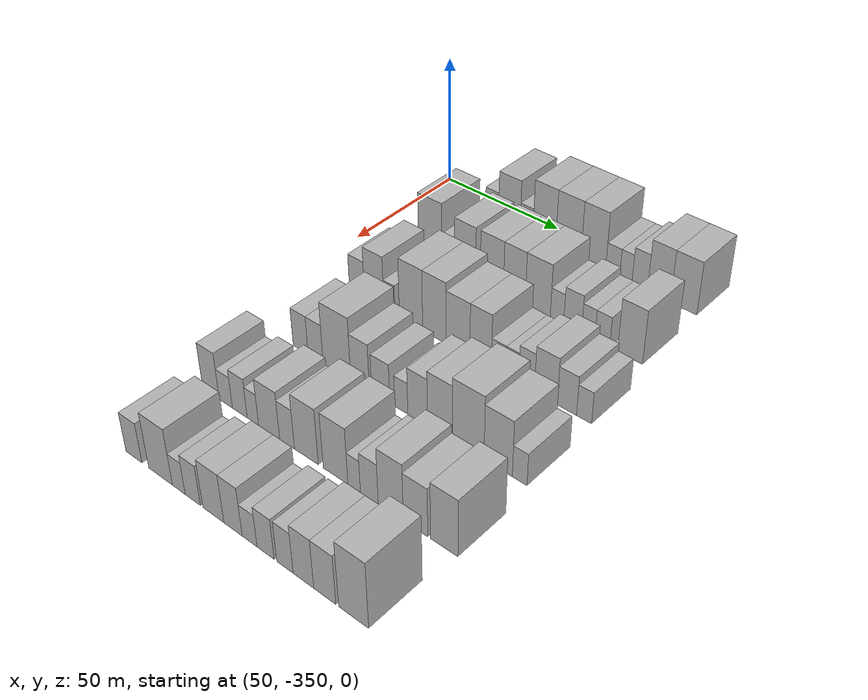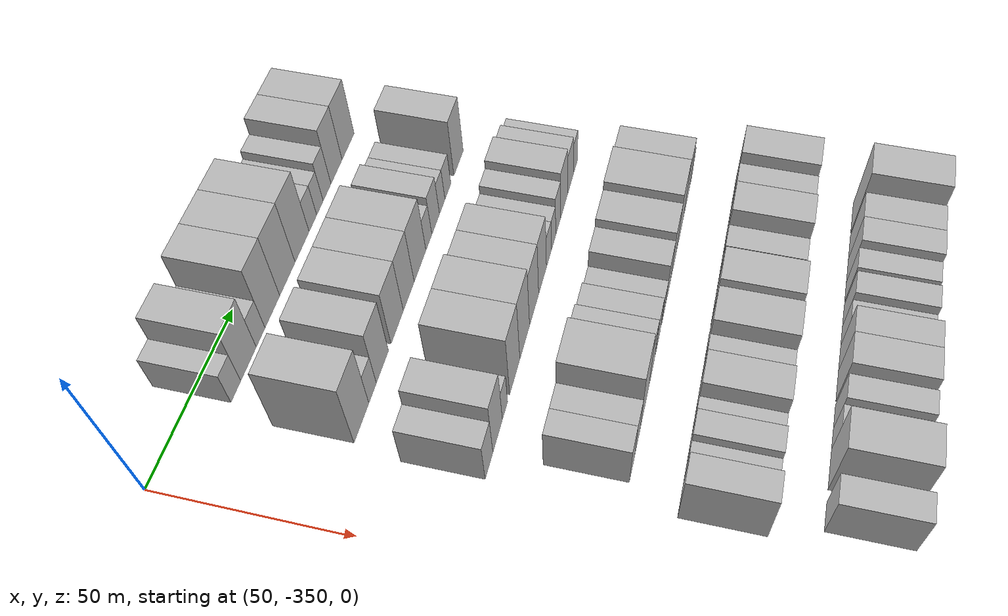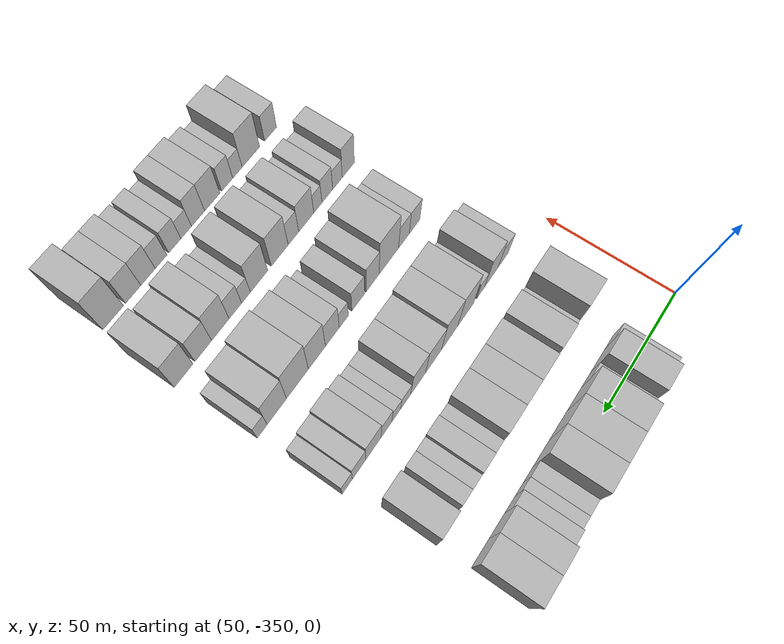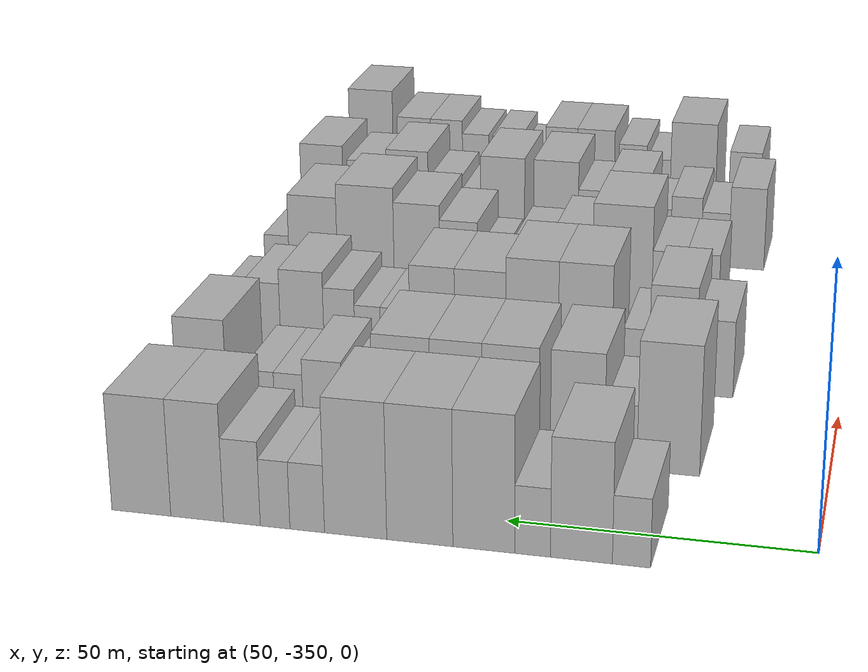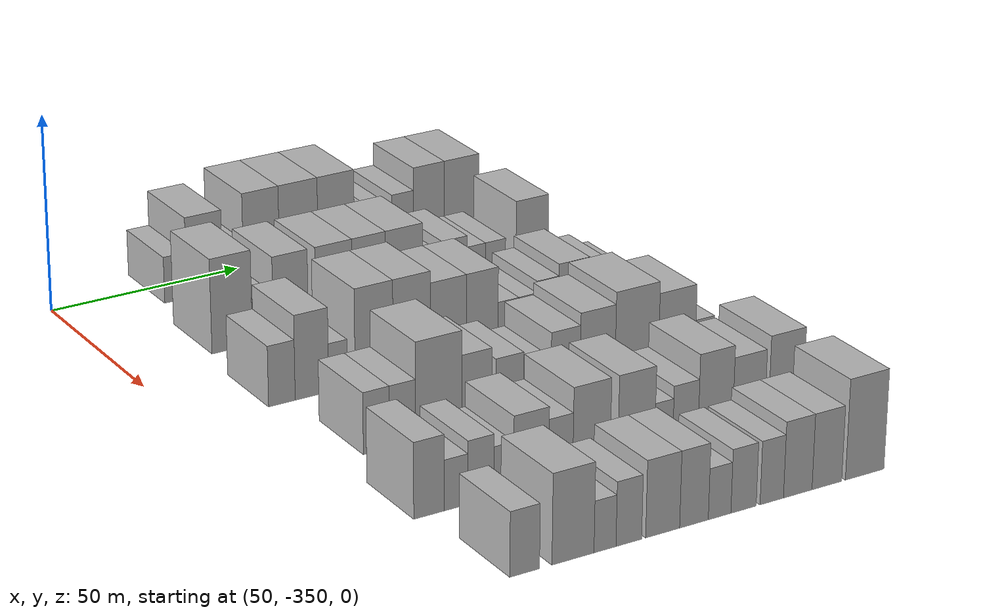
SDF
<sdf version="1.6">
 <world name="default">
  <model name="building_23">
   <static>1</static>
   <pose>50.0000 -321.8268 0 0.000000 0.000000 0.000000</pose>
   <link name="link">
    <pose>0 0 6.00 0 0 0</pose>
    <collision name="collision"><geometry><box><size>20.0000 5.9980 12.0000</size></box></geometry></collision>
    <visual name="visual">
     <cast_shadows>0</cast_shadows>
     <geometry><box><size>20.0000 5.9980 12.0000</size></box></geometry>
     <material>
      <script>
       <uri>model://HANNAS_wall/materials/scripts</uri>
       <uri>model://HANNAS_wall/materials/textures</uri>
       <name>vrc/HANNAS_wall</name>
      </script>
     </material>
    </visual>
   </link>
  </model>
  <model name="building_24">
   <static>1</static>
   <pose>50.0000 -313.9311 0 0.000000 0.000000 0.000000</pose>
   <link name="link">
    <pose>0 0 10.50 0 0 0</pose>
    <collision name="collision"><geometry><box><size>20.0000 9.7935 21.0000</size></box></geometry></collision>
    <visual name="visual">
     <cast_shadows>0</cast_shadows>
     <geometry><box><size>20.0000 9.7935 21.0000</size></box></geometry>
     <material>
      <script>
       <uri>model://HANNAS_wall/materials/scripts</uri>
       <uri>model://HANNAS_wall/materials/textures</uri>
       <name>vrc/HANNAS_wall</name>
      </script>
     </material>
    </visual>
   </link>
  </model>
  <model name="building_25">
   <static>1</static>
   <pose>50.0000 -306.1624 0 0.000000 0.000000 0.000000</pose>
   <link name="link">
    <pose>0 0 6.00 0 0 0</pose>
    <collision name="collision"><geometry><box><size>20.0000 5.7439 12.0000</size></box></geometry></collision>
    <visual name="visual">
     <cast_shadows>0</cast_shadows>
     <geometry><box><size>20.0000 5.7439 12.0000</size></box></geometry>
     <material>
      <script>
       <uri>model://HANNAS_wall/materials/scripts</uri>
       <uri>model://HANNAS_wall/materials/textures</uri>
       <name>vrc/HANNAS_wall</name>
      </script>
     </material>
    </visual>
   </link>
  </model>
  <model name="building_26">
   <static>1</static>
   <pose>50.0000 -298.3166 0 0.000000 0.000000 0.000000</pose>
   <link name="link">
    <pose>0 0 12.00 0 0 0</pose>
    <collision name="collision"><geometry><box><size>20.0000 9.9476 24.0000</size></box></geometry></collision>
    <visual name="visual">
     <cast_shadows>0</cast_shadows>
     <geometry><box><size>20.0000 9.9476 24.0000</size></box></geometry>
     <material>
      <script>
       <uri>model://HANNAS_wall/materials/scripts</uri>
       <uri>model://HANNAS_wall/materials/textures</uri>
       <name>vrc/HANNAS_wall</name>
      </script>
     </material>
    </visual>
   </link>
  </model>
  <model name="building_27">
   <static>1</static>
   <pose>50.0000 -287.9435 0 0.000000 0.000000 0.000000</pose>
   <link name="link">
    <pose>0 0 12.00 0 0 0</pose>
    <collision name="collision"><geometry><box><size>20.0000 10.7986 24.0000</size></box></geometry></collision>
    <visual name="visual">
     <cast_shadows>0</cast_shadows>
     <geometry><box><size>20.0000 10.7986 24.0000</size></box></geometry>
     <material>
      <script>
       <uri>model://HANNAS_wall/materials/scripts</uri>
       <uri>model://HANNAS_wall/materials/textures</uri>
       <name>vrc/HANNAS_wall</name>
      </script>
     </material>
    </visual>
   </link>
  </model>
  <model name="building_28">
   <static>1</static>
   <pose>50.0000 -277.3953 0 0.000000 0.000000 0.000000</pose>
   <link name="link">
    <pose>0 0 12.00 0 0 0</pose>
    <collision name="collision"><geometry><box><size>20.0000 10.2977 24.0000</size></box></geometry></collision>
    <visual name="visual">
     <cast_shadows>0</cast_shadows>
     <geometry><box><size>20.0000 10.2977 24.0000</size></box></geometry>
     <material>
      <script>
       <uri>model://HANNAS_wall/materials/scripts</uri>
       <uri>model://HANNAS_wall/materials/textures</uri>
       <name>vrc/HANNAS_wall</name>
      </script>
     </material>
    </visual>
   </link>
  </model>
  <model name="building_29">
   <static>1</static>
   <pose>50.0000 -269.3623 0 0.000000 0.000000 0.000000</pose>
   <link name="link">
    <pose>0 0 6.00 0 0 0</pose>
    <collision name="collision"><geometry><box><size>20.0000 5.7684 12.0000</size></box></geometry></collision>
    <visual name="visual">
     <cast_shadows>0</cast_shadows>
     <geometry><box><size>20.0000 5.7684 12.0000</size></box></geometry>
     <material>
      <script>
       <uri>model://HANNAS_wall/materials/scripts</uri>
       <uri>model://HANNAS_wall/materials/textures</uri>
       <name>vrc/HANNAS_wall</name>
      </script>
     </material>
    </visual>
   </link>
  </model>
  <model name="building_30">
   <static>1</static>
   <pose>50.0000 -263.9876 0 0.000000 0.000000 0.000000</pose>
   <link name="link">
    <pose>0 0 6.00 0 0 0</pose>
    <collision name="collision"><geometry><box><size>20.0000 4.9809 12.0000</size></box></geometry></collision>
    <visual name="visual">
     <cast_shadows>0</cast_shadows>
     <geometry><box><size>20.0000 4.9809 12.0000</size></box></geometry>
     <material>
      <script>
       <uri>model://HANNAS_wall/materials/scripts</uri>
       <uri>model://HANNAS_wall/materials/textures</uri>
       <name>vrc/HANNAS_wall</name>
      </script>
     </material>
    </visual>
   </link>
  </model>
  <model name="building_31">
   <static>1</static>
   <pose>50.0000 -258.3971 0 0.000000 0.000000 0.000000</pose>
   <link name="link">
    <pose>0 0 7.50 0 0 0</pose>
    <collision name="collision"><geometry><box><size>20.0000 6.2002 15.0000</size></box></geometry></collision>
    <visual name="visual">
     <cast_shadows>0</cast_shadows>
     <geometry><box><size>20.0000 6.2002 15.0000</size></box></geometry>
     <material>
      <script>
       <uri>model://HANNAS_wall/materials/scripts</uri>
       <uri>model://HANNAS_wall/materials/textures</uri>
       <name>vrc/HANNAS_wall</name>
      </script>
     </material>
    </visual>
   </link>
  </model>
  <model name="building_32">
   <static>1</static>
   <pose>50.0000 -250.7903 0 0.000000 0.000000 0.000000</pose>
   <link name="link">
    <pose>0 0 10.50 0 0 0</pose>
    <collision name="collision"><geometry><box><size>20.0000 9.0134 21.0000</size></box></geometry></collision>
    <visual name="visual">
     <cast_shadows>0</cast_shadows>
     <geometry><box><size>20.0000 9.0134 21.0000</size></box></geometry>
     <material>
      <script>
       <uri>model://HANNAS_wall/materials/scripts</uri>
       <uri>model://HANNAS_wall/materials/textures</uri>
       <name>vrc/HANNAS_wall</name>
      </script>
     </material>
    </visual>
   </link>
  </model>
  <model name="building_33">
   <static>1</static>
   <pose>50.0000 -241.2008 0 0.000000 0.000000 0.000000</pose>
   <link name="link">
    <pose>0 0 10.50 0 0 0</pose>
    <collision name="collision"><geometry><box><size>20.0000 10.1658 21.0000</size></box></geometry></collision>
    <visual name="visual">
     <cast_shadows>0</cast_shadows>
     <geometry><box><size>20.0000 10.1658 21.0000</size></box></geometry>
     <material>
      <script>
       <uri>model://HANNAS_wall/materials/scripts</uri>
       <uri>model://HANNAS_wall/materials/textures</uri>
       <name>vrc/HANNAS_wall</name>
      </script>
     </material>
    </visual>
   </link>
  </model>
  <model name="building_137">
   <static>1</static>
   <pose>82.0000 -323.1392 0 0.000000 0.000000 0.000000</pose>
   <link name="link">
    <pose>0 0 12.00 0 0 0</pose>
    <collision name="collision"><geometry><box><size>20.0000 10.6695 24.0000</size></box></geometry></collision>
    <visual name="visual">
     <cast_shadows>0</cast_shadows>
     <geometry><box><size>20.0000 10.6695 24.0000</size></box></geometry>
     <material>
      <script>
       <uri>model://HANNAS_wall/materials/scripts</uri>
       <uri>model://HANNAS_wall/materials/textures</uri>
       <name>vrc/HANNAS_wall</name>
      </script>
     </material>
    </visual>
   </link>
  </model>
  <model name="building_138">
   <static>1</static>
   <pose>82.0000 -315.0124 0 0.000000 0.000000 0.000000</pose>
   <link name="link">
    <pose>0 0 6.00 0 0 0</pose>
    <collision name="collision"><geometry><box><size>20.0000 5.5840 12.0000</size></box></geometry></collision>
    <visual name="visual">
     <cast_shadows>0</cast_shadows>
     <geometry><box><size>20.0000 5.5840 12.0000</size></box></geometry>
     <material>
      <script>
       <uri>model://HANNAS_wall/materials/scripts</uri>
       <uri>model://HANNAS_wall/materials/textures</uri>
       <name>vrc/HANNAS_wall</name>
      </script>
     </material>
    </visual>
   </link>
  </model>
  <model name="building_139">
   <static>1</static>
   <pose>82.0000 -307.5283 0 0.000000 0.000000 0.000000</pose>
   <link name="link">
    <pose>0 0 10.50 0 0 0</pose>
    <collision name="collision"><geometry><box><size>20.0000 9.3842 21.0000</size></box></geometry></collision>
    <visual name="visual">
     <cast_shadows>0</cast_shadows>
     <geometry><box><size>20.0000 9.3842 21.0000</size></box></geometry>
     <material>
      <script>
       <uri>model://HANNAS_wall/materials/scripts</uri>
       <uri>model://HANNAS_wall/materials/textures</uri>
       <name>vrc/HANNAS_wall</name>
      </script>
     </material>
    </visual>
   </link>
  </model>
  <model name="building_140">
   <static>1</static>
   <pose>82.0000 -295.8513 0 0.000000 0.000000 0.000000</pose>
   <link name="link">
    <pose>0 0 10.50 0 0 0</pose>
    <collision name="collision"><geometry><box><size>20.0000 9.9696 21.0000</size></box></geometry></collision>
    <visual name="visual">
     <cast_shadows>0</cast_shadows>
     <geometry><box><size>20.0000 9.9696 21.0000</size></box></geometry>
     <material>
      <script>
       <uri>model://HANNAS_wall/materials/scripts</uri>
       <uri>model://HANNAS_wall/materials/textures</uri>
       <name>vrc/HANNAS_wall</name>
      </script>
     </material>
    </visual>
   </link>
  </model>
  <model name="building_141">
   <static>1</static>
   <pose>82.0000 -286.2751 0 0.000000 0.000000 0.000000</pose>
   <link name="link">
    <pose>0 0 10.50 0 0 0</pose>
    <collision name="collision"><geometry><box><size>20.0000 9.1829 21.0000</size></box></geometry></collision>
    <visual name="visual">
     <cast_shadows>0</cast_shadows>
     <geometry><box><size>20.0000 9.1829 21.0000</size></box></geometry>
     <material>
      <script>
       <uri>model://HANNAS_wall/materials/scripts</uri>
       <uri>model://HANNAS_wall/materials/textures</uri>
       <name>vrc/HANNAS_wall</name>
      </script>
     </material>
    </visual>
   </link>
  </model>
  <model name="building_142">
   <static>1</static>
   <pose>82.0000 -276.5397 0 0.000000 0.000000 0.000000</pose>
   <link name="link">
    <pose>0 0 10.50 0 0 0</pose>
    <collision name="collision"><geometry><box><size>20.0000 10.2878 21.0000</size></box></geometry></collision>
    <visual name="visual">
     <cast_shadows>0</cast_shadows>
     <geometry><box><size>20.0000 10.2878 21.0000</size></box></geometry>
     <material>
      <script>
       <uri>model://HANNAS_wall/materials/scripts</uri>
       <uri>model://HANNAS_wall/materials/textures</uri>
       <name>vrc/HANNAS_wall</name>
      </script>
     </material>
    </visual>
   </link>
  </model>
  <model name="building_143">
   <static>1</static>
   <pose>82.0000 -268.6971 0 0.000000 0.000000 0.000000</pose>
   <link name="link">
    <pose>0 0 6.00 0 0 0</pose>
    <collision name="collision"><geometry><box><size>20.0000 5.3975 12.0000</size></box></geometry></collision>
    <visual name="visual">
     <cast_shadows>0</cast_shadows>
     <geometry><box><size>20.0000 5.3975 12.0000</size></box></geometry>
     <material>
      <script>
       <uri>model://HANNAS_wall/materials/scripts</uri>
       <uri>model://HANNAS_wall/materials/textures</uri>
       <name>vrc/HANNAS_wall</name>
      </script>
     </material>
    </visual>
   </link>
  </model>
  <model name="building_144">
   <static>1</static>
   <pose>82.0000 -262.4551 0 0.000000 0.000000 0.000000</pose>
   <link name="link">
    <pose>0 0 7.50 0 0 0</pose>
    <collision name="collision"><geometry><box><size>20.0000 7.0865 15.0000</size></box></geometry></collision>
    <visual name="visual">
     <cast_shadows>0</cast_shadows>
     <geometry><box><size>20.0000 7.0865 15.0000</size></box></geometry>
     <material>
      <script>
       <uri>model://HANNAS_wall/materials/scripts</uri>
       <uri>model://HANNAS_wall/materials/textures</uri>
       <name>vrc/HANNAS_wall</name>
      </script>
     </material>
    </visual>
   </link>
  </model>
  <model name="building_145">
   <static>1</static>
   <pose>82.0000 -256.3212 0 0.000000 0.000000 0.000000</pose>
   <link name="link">
    <pose>0 0 6.00 0 0 0</pose>
    <collision name="collision"><geometry><box><size>20.0000 5.1814 12.0000</size></box></geometry></collision>
    <visual name="visual">
     <cast_shadows>0</cast_shadows>
     <geometry><box><size>20.0000 5.1814 12.0000</size></box></geometry>
     <material>
      <script>
       <uri>model://HANNAS_wall/materials/scripts</uri>
       <uri>model://HANNAS_wall/materials/textures</uri>
       <name>vrc/HANNAS_wall</name>
      </script>
     </material>
    </visual>
   </link>
  </model>
  <model name="building_146">
   <static>1</static>
   <pose>82.0000 -250.8642 0 0.000000 0.000000 0.000000</pose>
   <link name="link">
    <pose>0 0 6.00 0 0 0</pose>
    <collision name="collision"><geometry><box><size>20.0000 5.7325 12.0000</size></box></geometry></collision>
    <visual name="visual">
     <cast_shadows>0</cast_shadows>
     <geometry><box><size>20.0000 5.7325 12.0000</size></box></geometry>
     <material>
      <script>
       <uri>model://HANNAS_wall/materials/scripts</uri>
       <uri>model://HANNAS_wall/materials/textures</uri>
       <name>vrc/HANNAS_wall</name>
      </script>
     </material>
    </visual>
   </link>
  </model>
  <model name="building_147">
   <static>1</static>
   <pose>82.0000 -240.3228 0 0.000000 0.000000 0.000000</pose>
   <link name="link">
    <pose>0 0 10.50 0 0 0</pose>
    <collision name="collision"><geometry><box><size>20.0000 9.3504 21.0000</size></box></geometry></collision>
    <visual name="visual">
     <cast_shadows>0</cast_shadows>
     <geometry><box><size>20.0000 9.3504 21.0000</size></box></geometry>
     <material>
      <script>
       <uri>model://HANNAS_wall/materials/scripts</uri>
       <uri>model://HANNAS_wall/materials/textures</uri>
       <name>vrc/HANNAS_wall</name>
      </script>
     </material>
    </visual>
   </link>
  </model>
  <model name="building_262">
   <static>1</static>
   <pose>114.0000 -327.1952 0 0.000000 0.000000 0.000000</pose>
   <link name="link">
    <pose>0 0 7.50 0 0 0</pose>
    <collision name="collision"><geometry><box><size>20.0000 6.8262 15.0000</size></box></geometry></collision>
    <visual name="visual">
     <cast_shadows>0</cast_shadows>
     <geometry><box><size>20.0000 6.8262 15.0000</size></box></geometry>
     <material>
      <script>
       <uri>model://HANNAS_wall/materials/scripts</uri>
       <uri>model://HANNAS_wall/materials/textures</uri>
       <name>vrc/HANNAS_wall</name>
      </script>
     </material>
    </visual>
   </link>
  </model>
  <model name="building_263">
   <static>1</static>
   <pose>114.0000 -319.4379 0 0.000000 0.000000 0.000000</pose>
   <link name="link">
    <pose>0 0 10.50 0 0 0</pose>
    <collision name="collision"><geometry><box><size>20.0000 8.6884 21.0000</size></box></geometry></collision>
    <visual name="visual">
     <cast_shadows>0</cast_shadows>
     <geometry><box><size>20.0000 8.6884 21.0000</size></box></geometry>
     <material>
      <script>
       <uri>model://HANNAS_wall/materials/scripts</uri>
       <uri>model://HANNAS_wall/materials/textures</uri>
       <name>vrc/HANNAS_wall</name>
      </script>
     </material>
    </visual>
   </link>
  </model>
  <model name="building_264">
   <static>1</static>
   <pose>114.0000 -312.6495 0 0.000000 0.000000 0.000000</pose>
   <link name="link">
    <pose>0 0 6.00 0 0 0</pose>
    <collision name="collision"><geometry><box><size>20.0000 4.8883 12.0000</size></box></geometry></collision>
    <visual name="visual">
     <cast_shadows>0</cast_shadows>
     <geometry><box><size>20.0000 4.8883 12.0000</size></box></geometry>
     <material>
      <script>
       <uri>model://HANNAS_wall/materials/scripts</uri>
       <uri>model://HANNAS_wall/materials/textures</uri>
       <name>vrc/HANNAS_wall</name>
      </script>
     </material>
    </visual>
   </link>
  </model>
  <model name="building_265">
   <static>1</static>
   <pose>114.0000 -303.1821 0 0.000000 0.000000 0.000000</pose>
   <link name="link">
    <pose>0 0 12.00 0 0 0</pose>
    <collision name="collision"><geometry><box><size>20.0000 10.0465 24.0000</size></box></geometry></collision>
    <visual name="visual">
     <cast_shadows>0</cast_shadows>
     <geometry><box><size>20.0000 10.0465 24.0000</size></box></geometry>
     <material>
      <script>
       <uri>model://HANNAS_wall/materials/scripts</uri>
       <uri>model://HANNAS_wall/materials/textures</uri>
       <name>vrc/HANNAS_wall</name>
      </script>
     </material>
    </visual>
   </link>
  </model>
  <model name="building_266">
   <static>1</static>
   <pose>114.0000 -293.1927 0 0.000000 0.000000 0.000000</pose>
   <link name="link">
    <pose>0 0 12.00 0 0 0</pose>
    <collision name="collision"><geometry><box><size>20.0000 9.9322 24.0000</size></box></geometry></collision>
    <visual name="visual">
     <cast_shadows>0</cast_shadows>
     <geometry><box><size>20.0000 9.9322 24.0000</size></box></geometry>
     <material>
      <script>
       <uri>model://HANNAS_wall/materials/scripts</uri>
       <uri>model://HANNAS_wall/materials/textures</uri>
       <name>vrc/HANNAS_wall</name>
      </script>
     </material>
    </visual>
   </link>
  </model>
  <model name="building_267">
   <static>1</static>
   <pose>114.0000 -283.3619 0 0.000000 0.000000 0.000000</pose>
   <link name="link">
    <pose>0 0 10.50 0 0 0</pose>
    <collision name="collision"><geometry><box><size>20.0000 9.7294 21.0000</size></box></geometry></collision>
    <visual name="visual">
     <cast_shadows>0</cast_shadows>
     <geometry><box><size>20.0000 9.7294 21.0000</size></box></geometry>
     <material>
      <script>
       <uri>model://HANNAS_wall/materials/scripts</uri>
       <uri>model://HANNAS_wall/materials/textures</uri>
       <name>vrc/HANNAS_wall</name>
      </script>
     </material>
    </visual>
   </link>
  </model>
  <model name="building_268">
   <static>1</static>
   <pose>114.0000 -274.1847 0 0.000000 0.000000 0.000000</pose>
   <link name="link">
    <pose>0 0 10.50 0 0 0</pose>
    <collision name="collision"><geometry><box><size>20.0000 8.6250 21.0000</size></box></geometry></collision>
    <visual name="visual">
     <cast_shadows>0</cast_shadows>
     <geometry><box><size>20.0000 8.6250 21.0000</size></box></geometry>
     <material>
      <script>
       <uri>model://HANNAS_wall/materials/scripts</uri>
       <uri>model://HANNAS_wall/materials/textures</uri>
       <name>vrc/HANNAS_wall</name>
      </script>
     </material>
    </visual>
   </link>
  </model>
  <model name="building_269">
   <static>1</static>
   <pose>114.0000 -267.0155 0 0.000000 0.000000 0.000000</pose>
   <link name="link">
    <pose>0 0 6.00 0 0 0</pose>
    <collision name="collision"><geometry><box><size>20.0000 5.7134 12.0000</size></box></geometry></collision>
    <visual name="visual">
     <cast_shadows>0</cast_shadows>
     <geometry><box><size>20.0000 5.7134 12.0000</size></box></geometry>
     <material>
      <script>
       <uri>model://HANNAS_wall/materials/scripts</uri>
       <uri>model://HANNAS_wall/materials/textures</uri>
       <name>vrc/HANNAS_wall</name>
      </script>
     </material>
    </visual>
   </link>
  </model>
  <model name="building_270">
   <static>1</static>
   <pose>114.0000 -261.6629 0 0.000000 0.000000 0.000000</pose>
   <link name="link">
    <pose>0 0 6.00 0 0 0</pose>
    <collision name="collision"><geometry><box><size>20.0000 4.9918 12.0000</size></box></geometry></collision>
    <visual name="visual">
     <cast_shadows>0</cast_shadows>
     <geometry><box><size>20.0000 4.9918 12.0000</size></box></geometry>
     <material>
      <script>
       <uri>model://HANNAS_wall/materials/scripts</uri>
       <uri>model://HANNAS_wall/materials/textures</uri>
       <name>vrc/HANNAS_wall</name>
      </script>
     </material>
    </visual>
   </link>
  </model>
  <model name="building_271">
   <static>1</static>
   <pose>114.0000 -256.1340 0 0.000000 0.000000 0.000000</pose>
   <link name="link">
    <pose>0 0 7.50 0 0 0</pose>
    <collision name="collision"><geometry><box><size>20.0000 6.0661 15.0000</size></box></geometry></collision>
    <visual name="visual">
     <cast_shadows>0</cast_shadows>
     <geometry><box><size>20.0000 6.0661 15.0000</size></box></geometry>
     <material>
      <script>
       <uri>model://HANNAS_wall/materials/scripts</uri>
       <uri>model://HANNAS_wall/materials/textures</uri>
       <name>vrc/HANNAS_wall</name>
      </script>
     </material>
    </visual>
   </link>
  </model>
  <model name="building_272">
   <static>1</static>
   <pose>114.0000 -248.8152 0 0.000000 0.000000 0.000000</pose>
   <link name="link">
    <pose>0 0 9.00 0 0 0</pose>
    <collision name="collision"><geometry><box><size>20.0000 8.5715 18.0000</size></box></geometry></collision>
    <visual name="visual">
     <cast_shadows>0</cast_shadows>
     <geometry><box><size>20.0000 8.5715 18.0000</size></box></geometry>
     <material>
      <script>
       <uri>model://HANNAS_wall/materials/scripts</uri>
       <uri>model://HANNAS_wall/materials/textures</uri>
       <name>vrc/HANNAS_wall</name>
      </script>
     </material>
    </visual>
   </link>
  </model>
  <model name="building_273">
   <static>1</static>
   <pose>114.0000 -240.9714 0 0.000000 0.000000 0.000000</pose>
   <link name="link">
    <pose>0 0 7.50 0 0 0</pose>
    <collision name="collision"><geometry><box><size>20.0000 7.1161 15.0000</size></box></geometry></collision>
    <visual name="visual">
     <cast_shadows>0</cast_shadows>
     <geometry><box><size>20.0000 7.1161 15.0000</size></box></geometry>
     <material>
      <script>
       <uri>model://HANNAS_wall/materials/scripts</uri>
       <uri>model://HANNAS_wall/materials/textures</uri>
       <name>vrc/HANNAS_wall</name>
      </script>
     </material>
    </visual>
   </link>
  </model>
  <model name="building_274">
   <static>1</static>
   <pose>114.0000 -234.6882 0 0.000000 0.000000 0.000000</pose>
   <link name="link">
    <pose>0 0 6.00 0 0 0</pose>
    <collision name="collision"><geometry><box><size>20.0000 5.4502 12.0000</size></box></geometry></collision>
    <visual name="visual">
     <cast_shadows>0</cast_shadows>
     <geometry><box><size>20.0000 5.4502 12.0000</size></box></geometry>
     <material>
      <script>
       <uri>model://HANNAS_wall/materials/scripts</uri>
       <uri>model://HANNAS_wall/materials/textures</uri>
       <name>vrc/HANNAS_wall</name>
      </script>
     </material>
    </visual>
   </link>
  </model>
  <model name="building_382">
   <static>1</static>
   <pose>146.0000 -320.8906 0 0.000000 0.000000 0.000000</pose>
   <link name="link">
    <pose>0 0 7.50 0 0 0</pose>
    <collision name="collision"><geometry><box><size>20.0000 6.6237 15.0000</size></box></geometry></collision>
    <visual name="visual">
     <cast_shadows>0</cast_shadows>
     <geometry><box><size>20.0000 6.6237 15.0000</size></box></geometry>
     <material>
      <script>
       <uri>model://HANNAS_wall/materials/scripts</uri>
       <uri>model://HANNAS_wall/materials/textures</uri>
       <name>vrc/HANNAS_wall</name>
      </script>
     </material>
    </visual>
   </link>
  </model>
  <model name="building_383">
   <static>1</static>
   <pose>146.0000 -314.2620 0 0.000000 0.000000 0.000000</pose>
   <link name="link">
    <pose>0 0 7.50 0 0 0</pose>
    <collision name="collision"><geometry><box><size>20.0000 6.6335 15.0000</size></box></geometry></collision>
    <visual name="visual">
     <cast_shadows>0</cast_shadows>
     <geometry><box><size>20.0000 6.6335 15.0000</size></box></geometry>
     <material>
      <script>
       <uri>model://HANNAS_wall/materials/scripts</uri>
       <uri>model://HANNAS_wall/materials/textures</uri>
       <name>vrc/HANNAS_wall</name>
      </script>
     </material>
    </visual>
   </link>
  </model>
  <model name="building_384">
   <static>1</static>
   <pose>146.0000 -304.9818 0 0.000000 0.000000 0.000000</pose>
   <link name="link">
    <pose>0 0 12.00 0 0 0</pose>
    <collision name="collision"><geometry><box><size>20.0000 11.9269 24.0000</size></box></geometry></collision>
    <visual name="visual">
     <cast_shadows>0</cast_shadows>
     <geometry><box><size>20.0000 11.9269 24.0000</size></box></geometry>
     <material>
      <script>
       <uri>model://HANNAS_wall/materials/scripts</uri>
       <uri>model://HANNAS_wall/materials/textures</uri>
       <name>vrc/HANNAS_wall</name>
      </script>
     </material>
    </visual>
   </link>
  </model>
  <model name="building_385">
   <static>1</static>
   <pose>146.0000 -295.1202 0 0.000000 0.000000 0.000000</pose>
   <link name="link">
    <pose>0 0 9.00 0 0 0</pose>
    <collision name="collision"><geometry><box><size>20.0000 7.7963 18.0000</size></box></geometry></collision>
    <visual name="visual">
     <cast_shadows>0</cast_shadows>
     <geometry><box><size>20.0000 7.7963 18.0000</size></box></geometry>
     <material>
      <script>
       <uri>model://HANNAS_wall/materials/scripts</uri>
       <uri>model://HANNAS_wall/materials/textures</uri>
       <name>vrc/HANNAS_wall</name>
      </script>
     </material>
    </visual>
   </link>
  </model>
  <model name="building_386">
   <static>1</static>
   <pose>146.0000 -286.5516 0 0.000000 0.000000 0.000000</pose>
   <link name="link">
    <pose>0 0 7.50 0 0 0</pose>
    <collision name="collision"><geometry><box><size>20.0000 7.3410 15.0000</size></box></geometry></collision>
    <visual name="visual">
     <cast_shadows>0</cast_shadows>
     <geometry><box><size>20.0000 7.3410 15.0000</size></box></geometry>
     <material>
      <script>
       <uri>model://HANNAS_wall/materials/scripts</uri>
       <uri>model://HANNAS_wall/materials/textures</uri>
       <name>vrc/HANNAS_wall</name>
      </script>
     </material>
    </visual>
   </link>
  </model>
  <model name="building_387">
   <static>1</static>
   <pose>146.0000 -278.2491 0 0.000000 0.000000 0.000000</pose>
   <link name="link">
    <pose>0 0 6.00 0 0 0</pose>
    <collision name="collision"><geometry><box><size>20.0000 5.2640 12.0000</size></box></geometry></collision>
    <visual name="visual">
     <cast_shadows>0</cast_shadows>
     <geometry><box><size>20.0000 5.2640 12.0000</size></box></geometry>
     <material>
      <script>
       <uri>model://HANNAS_wall/materials/scripts</uri>
       <uri>model://HANNAS_wall/materials/textures</uri>
       <name>vrc/HANNAS_wall</name>
      </script>
     </material>
    </visual>
   </link>
  </model>
  <model name="building_388">
   <static>1</static>
   <pose>146.0000 -271.7218 0 0.000000 0.000000 0.000000</pose>
   <link name="link">
    <pose>0 0 9.00 0 0 0</pose>
    <collision name="collision"><geometry><box><size>20.0000 7.7906 18.0000</size></box></geometry></collision>
    <visual name="visual">
     <cast_shadows>0</cast_shadows>
     <geometry><box><size>20.0000 7.7906 18.0000</size></box></geometry>
     <material>
      <script>
       <uri>model://HANNAS_wall/materials/scripts</uri>
       <uri>model://HANNAS_wall/materials/textures</uri>
       <name>vrc/HANNAS_wall</name>
      </script>
     </material>
    </visual>
   </link>
  </model>
  <model name="building_389">
   <static>1</static>
   <pose>146.0000 -263.0801 0 0.000000 0.000000 0.000000</pose>
   <link name="link">
    <pose>0 0 10.50 0 0 0</pose>
    <collision name="collision"><geometry><box><size>20.0000 9.4928 21.0000</size></box></geometry></collision>
    <visual name="visual">
     <cast_shadows>0</cast_shadows>
     <geometry><box><size>20.0000 9.4928 21.0000</size></box></geometry>
     <material>
      <script>
       <uri>model://HANNAS_wall/materials/scripts</uri>
       <uri>model://HANNAS_wall/materials/textures</uri>
       <name>vrc/HANNAS_wall</name>
      </script>
     </material>
    </visual>
   </link>
  </model>
  <model name="building_390">
   <static>1</static>
   <pose>146.0000 -252.3774 0 0.000000 0.000000 0.000000</pose>
   <link name="link">
    <pose>0 0 12.00 0 0 0</pose>
    <collision name="collision"><geometry><box><size>20.0000 11.9127 24.0000</size></box></geometry></collision>
    <visual name="visual">
     <cast_shadows>0</cast_shadows>
     <geometry><box><size>20.0000 11.9127 24.0000</size></box></geometry>
     <material>
      <script>
       <uri>model://HANNAS_wall/materials/scripts</uri>
       <uri>model://HANNAS_wall/materials/textures</uri>
       <name>vrc/HANNAS_wall</name>
      </script>
     </material>
    </visual>
   </link>
  </model>
  <model name="building_391">
   <static>1</static>
   <pose>146.0000 -241.2974 0 0.000000 0.000000 0.000000</pose>
   <link name="link">
    <pose>0 0 10.50 0 0 0</pose>
    <collision name="collision"><geometry><box><size>20.0000 10.2472 21.0000</size></box></geometry></collision>
    <visual name="visual">
     <cast_shadows>0</cast_shadows>
     <geometry><box><size>20.0000 10.2472 21.0000</size></box></geometry>
     <material>
      <script>
       <uri>model://HANNAS_wall/materials/scripts</uri>
       <uri>model://HANNAS_wall/materials/textures</uri>
       <name>vrc/HANNAS_wall</name>
      </script>
     </material>
    </visual>
   </link>
  </model>
  <model name="building_392">
   <static>1</static>
   <pose>146.0000 -233.5626 0 0.000000 0.000000 0.000000</pose>
   <link name="link">
    <pose>0 0 6.00 0 0 0</pose>
    <collision name="collision"><geometry><box><size>20.0000 5.2225 12.0000</size></box></geometry></collision>
    <visual name="visual">
     <cast_shadows>0</cast_shadows>
     <geometry><box><size>20.0000 5.2225 12.0000</size></box></geometry>
     <material>
      <script>
       <uri>model://HANNAS_wall/materials/scripts</uri>
       <uri>model://HANNAS_wall/materials/textures</uri>
       <name>vrc/HANNAS_wall</name>
      </script>
     </material>
    </visual>
   </link>
  </model>
  <model name="building_503">
   <static>1</static>
   <pose>178.0000 -326.4373 0 0.000000 0.000000 0.000000</pose>
   <link name="link">
    <pose>0 0 9.00 0 0 0</pose>
    <collision name="collision"><geometry><box><size>20.0000 7.4478 18.0000</size></box></geometry></collision>
    <visual name="visual">
     <cast_shadows>0</cast_shadows>
     <geometry><box><size>20.0000 7.4478 18.0000</size></box></geometry>
     <material>
      <script>
       <uri>model://HANNAS_wall/materials/scripts</uri>
       <uri>model://HANNAS_wall/materials/textures</uri>
       <name>vrc/HANNAS_wall</name>
      </script>
     </material>
    </visual>
   </link>
  </model>
  <model name="building_504">
   <static>1</static>
   <pose>178.0000 -319.7761 0 0.000000 0.000000 0.000000</pose>
   <link name="link">
    <pose>0 0 6.00 0 0 0</pose>
    <collision name="collision"><geometry><box><size>20.0000 5.8747 12.0000</size></box></geometry></collision>
    <visual name="visual">
     <cast_shadows>0</cast_shadows>
     <geometry><box><size>20.0000 5.8747 12.0000</size></box></geometry>
     <material>
      <script>
       <uri>model://HANNAS_wall/materials/scripts</uri>
       <uri>model://HANNAS_wall/materials/textures</uri>
       <name>vrc/HANNAS_wall</name>
      </script>
     </material>
    </visual>
   </link>
  </model>
  <model name="building_505">
   <static>1</static>
   <pose>178.0000 -313.5915 0 0.000000 0.000000 0.000000</pose>
   <link name="link">
    <pose>0 0 7.50 0 0 0</pose>
    <collision name="collision"><geometry><box><size>20.0000 6.4946 15.0000</size></box></geometry></collision>
    <visual name="visual">
     <cast_shadows>0</cast_shadows>
     <geometry><box><size>20.0000 6.4946 15.0000</size></box></geometry>
     <material>
      <script>
       <uri>model://HANNAS_wall/materials/scripts</uri>
       <uri>model://HANNAS_wall/materials/textures</uri>
       <name>vrc/HANNAS_wall</name>
      </script>
     </material>
    </visual>
   </link>
  </model>
  <model name="building_506">
   <static>1</static>
   <pose>178.0000 -307.8906 0 0.000000 0.000000 0.000000</pose>
   <link name="link">
    <pose>0 0 6.00 0 0 0</pose>
    <collision name="collision"><geometry><box><size>20.0000 4.9072 12.0000</size></box></geometry></collision>
    <visual name="visual">
     <cast_shadows>0</cast_shadows>
     <geometry><box><size>20.0000 4.9072 12.0000</size></box></geometry>
     <material>
      <script>
       <uri>model://HANNAS_wall/materials/scripts</uri>
       <uri>model://HANNAS_wall/materials/textures</uri>
       <name>vrc/HANNAS_wall</name>
      </script>
     </material>
    </visual>
   </link>
  </model>
  <model name="building_507">
   <static>1</static>
   <pose>178.0000 -300.9875 0 0.000000 0.000000 0.000000</pose>
   <link name="link">
    <pose>0 0 9.00 0 0 0</pose>
    <collision name="collision"><geometry><box><size>20.0000 8.8991 18.0000</size></box></geometry></collision>
    <visual name="visual">
     <cast_shadows>0</cast_shadows>
     <geometry><box><size>20.0000 8.8991 18.0000</size></box></geometry>
     <material>
      <script>
       <uri>model://HANNAS_wall/materials/scripts</uri>
       <uri>model://HANNAS_wall/materials/textures</uri>
       <name>vrc/HANNAS_wall</name>
      </script>
     </material>
    </visual>
   </link>
  </model>
  <model name="building_508">
   <static>1</static>
   <pose>178.0000 -293.4625 0 0.000000 0.000000 0.000000</pose>
   <link name="link">
    <pose>0 0 7.50 0 0 0</pose>
    <collision name="collision"><geometry><box><size>20.0000 6.1510 15.0000</size></box></geometry></collision>
    <visual name="visual">
     <cast_shadows>0</cast_shadows>
     <geometry><box><size>20.0000 6.1510 15.0000</size></box></geometry>
     <material>
      <script>
       <uri>model://HANNAS_wall/materials/scripts</uri>
       <uri>model://HANNAS_wall/materials/textures</uri>
       <name>vrc/HANNAS_wall</name>
      </script>
     </material>
    </visual>
   </link>
  </model>
  <model name="building_509">
   <static>1</static>
   <pose>178.0000 -285.5588 0 0.000000 0.000000 0.000000</pose>
   <link name="link">
    <pose>0 0 10.50 0 0 0</pose>
    <collision name="collision"><geometry><box><size>20.0000 9.6562 21.0000</size></box></geometry></collision>
    <visual name="visual">
     <cast_shadows>0</cast_shadows>
     <geometry><box><size>20.0000 9.6562 21.0000</size></box></geometry>
     <material>
      <script>
       <uri>model://HANNAS_wall/materials/scripts</uri>
       <uri>model://HANNAS_wall/materials/textures</uri>
       <name>vrc/HANNAS_wall</name>
      </script>
     </material>
    </visual>
   </link>
  </model>
  <model name="building_510">
   <static>1</static>
   <pose>178.0000 -273.9054 0 0.000000 0.000000 0.000000</pose>
   <link name="link">
    <pose>0 0 10.50 0 0 0</pose>
    <collision name="collision"><geometry><box><size>20.0000 9.6506 21.0000</size></box></geometry></collision>
    <visual name="visual">
     <cast_shadows>0</cast_shadows>
     <geometry><box><size>20.0000 9.6506 21.0000</size></box></geometry>
     <material>
      <script>
       <uri>model://HANNAS_wall/materials/scripts</uri>
       <uri>model://HANNAS_wall/materials/textures</uri>
       <name>vrc/HANNAS_wall</name>
      </script>
     </material>
    </visual>
   </link>
  </model>
  <model name="building_511">
   <static>1</static>
   <pose>178.0000 -266.6760 0 0.000000 0.000000 0.000000</pose>
   <link name="link">
    <pose>0 0 6.00 0 0 0</pose>
    <collision name="collision"><geometry><box><size>20.0000 4.8082 12.0000</size></box></geometry></collision>
    <visual name="visual">
     <cast_shadows>0</cast_shadows>
     <geometry><box><size>20.0000 4.8082 12.0000</size></box></geometry>
     <material>
      <script>
       <uri>model://HANNAS_wall/materials/scripts</uri>
       <uri>model://HANNAS_wall/materials/textures</uri>
       <name>vrc/HANNAS_wall</name>
      </script>
     </material>
    </visual>
   </link>
  </model>
  <model name="building_512">
   <static>1</static>
   <pose>178.0000 -260.8994 0 0.000000 0.000000 0.000000</pose>
   <link name="link">
    <pose>0 0 7.50 0 0 0</pose>
    <collision name="collision"><geometry><box><size>20.0000 6.7452 15.0000</size></box></geometry></collision>
    <visual name="visual">
     <cast_shadows>0</cast_shadows>
     <geometry><box><size>20.0000 6.7452 15.0000</size></box></geometry>
     <material>
      <script>
       <uri>model://HANNAS_wall/materials/scripts</uri>
       <uri>model://HANNAS_wall/materials/textures</uri>
       <name>vrc/HANNAS_wall</name>
      </script>
     </material>
    </visual>
   </link>
  </model>
  <model name="building_513">
   <static>1</static>
   <pose>178.0000 -252.8734 0 0.000000 0.000000 0.000000</pose>
   <link name="link">
    <pose>0 0 10.50 0 0 0</pose>
    <collision name="collision"><geometry><box><size>20.0000 9.3066 21.0000</size></box></geometry></collision>
    <visual name="visual">
     <cast_shadows>0</cast_shadows>
     <geometry><box><size>20.0000 9.3066 21.0000</size></box></geometry>
     <material>
      <script>
       <uri>model://HANNAS_wall/materials/scripts</uri>
       <uri>model://HANNAS_wall/materials/textures</uri>
       <name>vrc/HANNAS_wall</name>
      </script>
     </material>
    </visual>
   </link>
  </model>
  <model name="building_514">
   <static>1</static>
   <pose>178.0000 -243.8401 0 0.000000 0.000000 0.000000</pose>
   <link name="link">
    <pose>0 0 9.00 0 0 0</pose>
    <collision name="collision"><geometry><box><size>20.0000 8.7601 18.0000</size></box></geometry></collision>
    <visual name="visual">
     <cast_shadows>0</cast_shadows>
     <geometry><box><size>20.0000 8.7601 18.0000</size></box></geometry>
     <material>
      <script>
       <uri>model://HANNAS_wall/materials/scripts</uri>
       <uri>model://HANNAS_wall/materials/textures</uri>
       <name>vrc/HANNAS_wall</name>
      </script>
     </material>
    </visual>
   </link>
  </model>
  <model name="building_515">
   <static>1</static>
   <pose>178.0000 -233.6825 0 0.000000 0.000000 0.000000</pose>
   <link name="link">
    <pose>0 0 10.50 0 0 0</pose>
    <collision name="collision"><geometry><box><size>20.0000 9.5552 21.0000</size></box></geometry></collision>
    <visual name="visual">
     <cast_shadows>0</cast_shadows>
     <geometry><box><size>20.0000 9.5552 21.0000</size></box></geometry>
     <material>
      <script>
       <uri>model://HANNAS_wall/materials/scripts</uri>
       <uri>model://HANNAS_wall/materials/textures</uri>
       <name>vrc/HANNAS_wall</name>
      </script>
     </material>
    </visual>
   </link>
  </model>
  <model name="building_623">
   <static>1</static>
   <pose>210.0000 -322.6844 0 0.000000 0.000000 0.000000</pose>
   <link name="link">
    <pose>0 0 7.50 0 0 0</pose>
    <collision name="collision"><geometry><box><size>20.0000 7.1702 15.0000</size></box></geometry></collision>
    <visual name="visual">
     <cast_shadows>0</cast_shadows>
     <geometry><box><size>20.0000 7.1702 15.0000</size></box></geometry>
     <material>
      <script>
       <uri>model://HANNAS_wall/materials/scripts</uri>
       <uri>model://HANNAS_wall/materials/textures</uri>
       <name>vrc/HANNAS_wall</name>
      </script>
     </material>
    </visual>
   </link>
  </model>
  <model name="building_624">
   <static>1</static>
   <pose>210.0000 -310.9563 0 0.000000 0.000000 0.000000</pose>
   <link name="link">
    <pose>0 0 10.50 0 0 0</pose>
    <collision name="collision"><geometry><box><size>20.0000 10.2860 21.0000</size></box></geometry></collision>
    <visual name="visual">
     <cast_shadows>0</cast_shadows>
     <geometry><box><size>20.0000 10.2860 21.0000</size></box></geometry>
     <material>
      <script>
       <uri>model://HANNAS_wall/materials/scripts</uri>
       <uri>model://HANNAS_wall/materials/textures</uri>
       <name>vrc/HANNAS_wall</name>
      </script>
     </material>
    </visual>
   </link>
  </model>
  <model name="building_625">
   <static>1</static>
   <pose>210.0000 -303.0950 0 0.000000 0.000000 0.000000</pose>
   <link name="link">
    <pose>0 0 6.00 0 0 0</pose>
    <collision name="collision"><geometry><box><size>20.0000 5.4365 12.0000</size></box></geometry></collision>
    <visual name="visual">
     <cast_shadows>0</cast_shadows>
     <geometry><box><size>20.0000 5.4365 12.0000</size></box></geometry>
     <material>
      <script>
       <uri>model://HANNAS_wall/materials/scripts</uri>
       <uri>model://HANNAS_wall/materials/textures</uri>
       <name>vrc/HANNAS_wall</name>
      </script>
     </material>
    </visual>
   </link>
  </model>
  <model name="building_626">
   <static>1</static>
   <pose>210.0000 -297.1779 0 0.000000 0.000000 0.000000</pose>
   <link name="link">
    <pose>0 0 7.50 0 0 0</pose>
    <collision name="collision"><geometry><box><size>20.0000 6.3976 15.0000</size></box></geometry></collision>
    <visual name="visual">
     <cast_shadows>0</cast_shadows>
     <geometry><box><size>20.0000 6.3976 15.0000</size></box></geometry>
     <material>
      <script>
       <uri>model://HANNAS_wall/materials/scripts</uri>
       <uri>model://HANNAS_wall/materials/textures</uri>
       <name>vrc/HANNAS_wall</name>
      </script>
     </material>
    </visual>
   </link>
  </model>
  <model name="building_627">
   <static>1</static>
   <pose>210.0000 -288.6953 0 0.000000 0.000000 0.000000</pose>
   <link name="link">
    <pose>0 0 9.00 0 0 0</pose>
    <collision name="collision"><geometry><box><size>20.0000 8.5675 18.0000</size></box></geometry></collision>
    <visual name="visual">
     <cast_shadows>0</cast_shadows>
     <geometry><box><size>20.0000 8.5675 18.0000</size></box></geometry>
     <material>
      <script>
       <uri>model://HANNAS_wall/materials/scripts</uri>
       <uri>model://HANNAS_wall/materials/textures</uri>
       <name>vrc/HANNAS_wall</name>
      </script>
     </material>
    </visual>
   </link>
  </model>
  <model name="building_628">
   <static>1</static>
   <pose>210.0000 -280.7589 0 0.000000 0.000000 0.000000</pose>
   <link name="link">
    <pose>0 0 9.00 0 0 0</pose>
    <collision name="collision"><geometry><box><size>20.0000 7.3053 18.0000</size></box></geometry></collision>
    <visual name="visual">
     <cast_shadows>0</cast_shadows>
     <geometry><box><size>20.0000 7.3053 18.0000</size></box></geometry>
     <material>
      <script>
       <uri>model://HANNAS_wall/materials/scripts</uri>
       <uri>model://HANNAS_wall/materials/textures</uri>
       <name>vrc/HANNAS_wall</name>
      </script>
     </material>
    </visual>
   </link>
  </model>
  <model name="building_629">
   <static>1</static>
   <pose>210.0000 -274.2017 0 0.000000 0.000000 0.000000</pose>
   <link name="link">
    <pose>0 0 6.00 0 0 0</pose>
    <collision name="collision"><geometry><box><size>20.0000 5.8090 12.0000</size></box></geometry></collision>
    <visual name="visual">
     <cast_shadows>0</cast_shadows>
     <geometry><box><size>20.0000 5.8090 12.0000</size></box></geometry>
     <material>
      <script>
       <uri>model://HANNAS_wall/materials/scripts</uri>
       <uri>model://HANNAS_wall/materials/textures</uri>
       <name>vrc/HANNAS_wall</name>
      </script>
     </material>
    </visual>
   </link>
  </model>
  <model name="building_630">
   <static>1</static>
   <pose>210.0000 -268.0197 0 0.000000 0.000000 0.000000</pose>
   <link name="link">
    <pose>0 0 7.50 0 0 0</pose>
    <collision name="collision"><geometry><box><size>20.0000 6.5551 15.0000</size></box></geometry></collision>
    <visual name="visual">
     <cast_shadows>0</cast_shadows>
     <geometry><box><size>20.0000 6.5551 15.0000</size></box></geometry>
     <material>
      <script>
       <uri>model://HANNAS_wall/materials/scripts</uri>
       <uri>model://HANNAS_wall/materials/textures</uri>
       <name>vrc/HANNAS_wall</name>
      </script>
     </material>
    </visual>
   </link>
  </model>
  <model name="building_631">
   <static>1</static>
   <pose>210.0000 -260.6737 0 0.000000 0.000000 0.000000</pose>
   <link name="link">
    <pose>0 0 7.50 0 0 0</pose>
    <collision name="collision"><geometry><box><size>20.0000 6.1368 15.0000</size></box></geometry></collision>
    <visual name="visual">
     <cast_shadows>0</cast_shadows>
     <geometry><box><size>20.0000 6.1368 15.0000</size></box></geometry>
     <material>
      <script>
       <uri>model://HANNAS_wall/materials/scripts</uri>
       <uri>model://HANNAS_wall/materials/textures</uri>
       <name>vrc/HANNAS_wall</name>
      </script>
     </material>
    </visual>
   </link>
  </model>
  <model name="building_632">
   <static>1</static>
   <pose>210.0000 -253.8347 0 0.000000 0.000000 0.000000</pose>
   <link name="link">
    <pose>0 0 9.00 0 0 0</pose>
    <collision name="collision"><geometry><box><size>20.0000 7.5413 18.0000</size></box></geometry></collision>
    <visual name="visual">
     <cast_shadows>0</cast_shadows>
     <geometry><box><size>20.0000 7.5413 18.0000</size></box></geometry>
     <material>
      <script>
       <uri>model://HANNAS_wall/materials/scripts</uri>
       <uri>model://HANNAS_wall/materials/textures</uri>
       <name>vrc/HANNAS_wall</name>
      </script>
     </material>
    </visual>
   </link>
  </model>
  <model name="building_633">
   <static>1</static>
   <pose>210.0000 -246.1049 0 0.000000 0.000000 0.000000</pose>
   <link name="link">
    <pose>0 0 9.00 0 0 0</pose>
    <collision name="collision"><geometry><box><size>20.0000 7.9183 18.0000</size></box></geometry></collision>
    <visual name="visual">
     <cast_shadows>0</cast_shadows>
     <geometry><box><size>20.0000 7.9183 18.0000</size></box></geometry>
     <material>
      <script>
       <uri>model://HANNAS_wall/materials/scripts</uri>
       <uri>model://HANNAS_wall/materials/textures</uri>
       <name>vrc/HANNAS_wall</name>
      </script>
     </material>
    </visual>
   </link>
  </model>
  <model name="building_634">
   <static>1</static>
   <pose>210.0000 -235.9424 0 0.000000 0.000000 0.000000</pose>
   <link name="link">
    <pose>0 0 12.00 0 0 0</pose>
    <collision name="collision"><geometry><box><size>20.0000 10.4067 24.0000</size></box></geometry></collision>
    <visual name="visual">
     <cast_shadows>0</cast_shadows>
     <geometry><box><size>20.0000 10.4067 24.0000</size></box></geometry>
     <material>
      <script>
       <uri>model://HANNAS_wall/materials/scripts</uri>
       <uri>model://HANNAS_wall/materials/textures</uri>
       <name>vrc/HANNAS_wall</name>
      </script>
     </material>
    </visual>
   </link>
  </model>
 </world>
</sdf>
